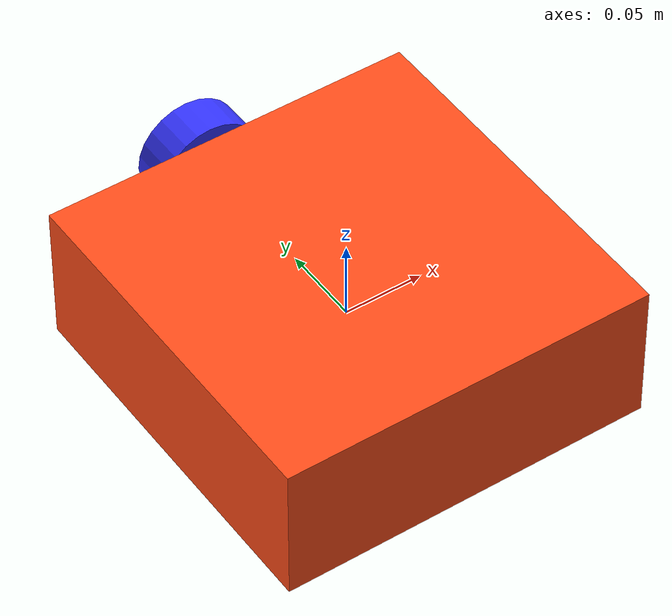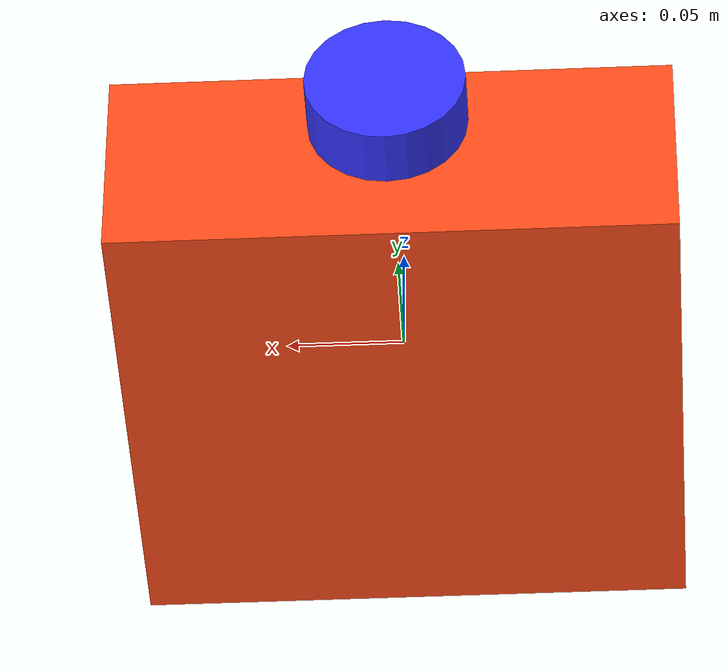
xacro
<?xml version="1.0"?>
<robot xmlns:xacro="http://www.ros.org/wiki/xacro" name="diff_drive">

    <xacro:include filename="inertial_macros.xacro"/>

    <xacro:property name="chassis_length" value="0.235"/>
    <xacro:property name="chassis_width" value="0.235"/>
    <xacro:property name="chassis_height" value="0.09"/>
    <xacro:property name="chassis_mass" value="1.0"/>

    <xacro:property name="wheel_radius" value="0.033"/>
    <xacro:property name="wheel_thickness" value="0.026"/>
    <xacro:property name="wheel_mass" value="0.05"/>

    <xacro:property name="wheel_offset_x" value="0.226"/>
    <xacro:property name="wheel_offset_y" value="0.1485"/>
    <xacro:property name="wheel_offset_z" value="0.01"/>

    <xacro:property name="caster_wheel_radius" value="0.01"/>
    <xacro:property name="caster_wheel_mass" value="0.01"/>
    <xacro:property name="caster_wheel_offset_x" value="0.075"/>
    <xacro:property name="caster_wheel_offset_z" value="${wheel_offset_z - wheel_radius + caster_wheel_radius}"/>

    <material name="white">
        <color rgba="1 1 1 1" />
    </material>

    <material name="orange">
        <color rgba="1 0.3 0.1 1"/>
    </material>

    <material name="blue">
        <color rgba="0.2 0.2 1 1"/>
    </material>

    <material name="black">
        <color rgba="0 0 0 1"/>
    </material>

    <material name="red">
        <color rgba="1 0 0 1"/>
    </material>

    <!-- BASE LINK -->
    <!-- Seems to needed to not get warnings in Rviz -->
    <link name="base_link">
    </link>

    <!-- CHASSIS LINK -->
    <joint name="chassis_joint" type="fixed">
        <parent link="base_link"/>
        <child link="chassis"/>
        <origin xyz="0 0 0"/>
    </joint>

    <link name="chassis">
        <visual>
            <origin xyz="0 0 0"/>
            <geometry>
                <box size="0.235 0.235 0.09"/>
            </geometry>
            <material name="orange"/>
        </visual>
        <collision>
            <origin xyz="0 0 0"/>
            <geometry>
                <box size="0.235 0.235 0.09"/>
            </geometry>
        </collision>
    </link>

    <!-- LEFT WHEEL LINK -->
    <joint name="left_wheel_joint" type="continuous">
        <parent link="base_link"/>
        <child link="left_wheel"/>
        <origin xyz="0 ${wheel_offset_y} 0" rpy="-${pi/2} 0 0" />
        <axis xyz="0 0 1"/>
    </joint>

    <link name="left_wheel">
        <visual>
            <geometry>
                <cylinder radius="${wheel_radius}" length="${wheel_thickness}"/>
            </geometry>
            <material name="blue"/>
        </visual>
        <collision>
            <geometry>
                <sphere radius="${wheel_radius}"/>
            </geometry>
        </collision>
    </link>

    <!-- RIGHT WHEEL LINK -->
    <joint name="right_wheel_joint" type="continuous">
        <parent link="base_link"/>
        <child link="right_wheel"/>
        <origin xyz="0 0 0" rpy="0 0 0" />
        <axis xyz="0 0 -1"/>
    </joint>

    <link name="right_wheel">
        <visual>
            <geometry>
                <cylinder radius="${wheel_radius}" length="${wheel_thickness}"/>
            </geometry>
            <material name="blue"/>
        </visual>
        <collision>
            <geometry>
                <sphere radius="${wheel_radius}"/>
            </geometry>
        </collision>
    </link>

    <!-- CASTER WHEEL LINK -->
    <joint name="caster_wheel_joint" type="fixed">
        <parent link="chassis"/>
        <child link="caster_wheel"/>
        <origin xyz="0 0 0"/>
    </joint>

    <link name="caster_wheel">
        <visual>
            <geometry>
                <sphere radius="${caster_wheel_radius}"/>
            </geometry>
            <material name="white"/>
        </visual>
        <collision>
            <geometry>
                <sphere radius="${caster_wheel_radius}"/>
            </geometry>
        </collision>
    </link>

    <gazebo reference="caster_wheel">
        <material>Gazebo/White</material>
        <mu1 value="0.001"/>
        <mu2 value="0.001"/>
    </gazebo>
</robot>
